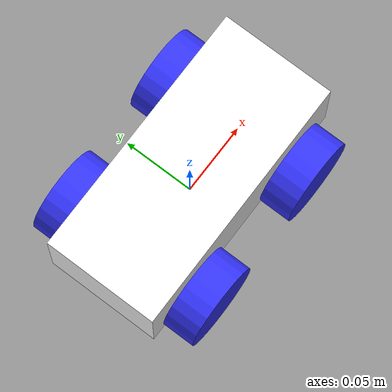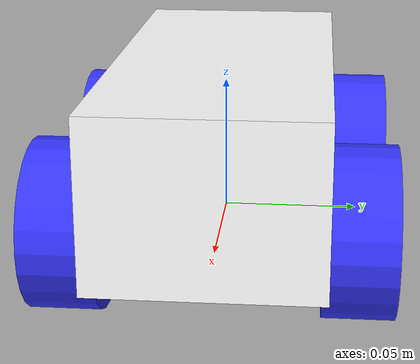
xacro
<?xml version="1.0"?>
<robot xmlns:xacro="http://www.ros.org/wiki/xacro">

    <xacro:include filename="inertial_macros.xacro"/>

    <material name="white">
        <color rgba="1 1 1 1"/>
    </material>

    <material name="orange">
        <color rgba="1 0.3 0.1 1"/>
    </material>

    <material name="blue">
        <color rgba="0.2 0.2 1 1"/>
    </material>

    <material name="black">
        <color rgba="0 0 0 1"/>
    </material>

    <material name="red">
        <color rgba="1 0 0 1"/>
    </material>

    <!-- BASE LINK -->

    <link name="base_link">

    </link>

    <!-- CHASSIS LINK -->

    <joint name="chassis_joint" type="fixed">
        <parent link="base_link"/>
        <child link="chassis"/>
        <origin xyz="-0.09 0 0"/>
    </joint>

    <link name="chassis">
        <visual>
            <origin xyz="0.09 0 0.03" rpy="0 0 0"/>
            <geometry>
                <box size="0.18 0.08 0.06"/>
            </geometry>
            <material name="white"/>
        </visual>
        <collision>
            <origin xyz="0.09 0 0.03" rpy="0 0 0"/>
            <geometry>
                <box size="0.18 0.08 0.06"/>
            </geometry>
        </collision>
        <xacro:inertial_box mass="0.01" x="0.18" y="0.08" z="0.06">
            <origin xyz="0.09 0 0.03" rpy="0 0 0"/>
        </xacro:inertial_box>
    </link>

    <gazebo reference="chassis">
        <material>Gazebo/White</material>
    </gazebo>

    <!-- REAR LEFT WHEEL LINK -->

    <joint name="rear_left_wheel_joint" type="continuous">
        <parent link="chassis"/>
        <child link="rear_left_wheel"/>
        <origin xyz="0.04 0.05 0.01" rpy="-${pi/2} 0 0"/>
        <axis xyz="0 0 1"/>
    </joint>

    <link name="rear_left_wheel">
        <visual>
            <geometry>
                <cylinder radius="0.03" length="0.025"/>
            </geometry>
            <material name="blue"/>
        </visual>
        <collision>
            <geometry>
                <cylinder radius="0.03" length="0.025"/>
            </geometry>
        </collision>
        <xacro:inertial_cylinder mass="0.01" length="0.025" radius="0.03">
            <origin xyz="0 0 0" rpy="0 0 0"/>
        </xacro:inertial_cylinder>
    </link>

    <gazebo reference="rear_left_wheel">
        <material>Gazebo/Blue</material>
    </gazebo>

    <!-- FRONT LEFT WHEEL LINK -->

    <joint name="front_left_wheel_joint" type="continuous">
        <parent link="chassis"/>
        <child link="front_left_wheel"/>
        <origin xyz="0.14 0.05 0.01" rpy="-${pi/2} 0 0"/>
        <axis xyz="0 0 1"/>
    </joint>

    <link name="front_left_wheel">
        <visual>
            <geometry>
                <cylinder radius="0.03" length="0.025"/>
            </geometry>
            <material name="blue"/>
        </visual>
        <collision>
            <geometry>
                <cylinder radius="0.03" length="0.025"/>
            </geometry>
        </collision>
        <xacro:inertial_cylinder mass="0.01" length="0.025" radius="0.03">
            <origin xyz="0 0 0" rpy="0 0 0"/>
        </xacro:inertial_cylinder>
    </link>

    <gazebo reference="front_left_wheel">
        <material>Gazebo/Blue</material>
    </gazebo>

    <!-- REAR RIGHT WHEEL LINK -->

    <joint name="rear_right_wheel_joint" type="continuous">
        <parent link="chassis"/>
        <child link="rear_right_wheel"/>
        <origin xyz="0.04 -0.05 0.01" rpy="${pi/2} 0 0"/>
        <axis xyz="0 0 -1"/>
    </joint>

    <link name="rear_right_wheel">
        <visual>
            <geometry>
                <cylinder radius="0.03" length="0.025"/>
            </geometry>
            <material name="blue"/>
        </visual>
        <collision>
            <geometry>
                <cylinder radius="0.03" length="0.025"/>
            </geometry>
        </collision>
        <xacro:inertial_cylinder mass="0.01" length="0.025" radius="0.03">
            <origin xyz="0 0 0" rpy="0 0 0"/>
        </xacro:inertial_cylinder>
    </link>

    <gazebo reference="rear_right_wheel">
        <material>Gazebo/Blue</material>
    </gazebo>

    <!-- FRONT RIGHT WHEEL LINK -->

    <joint name="front_right_wheel_joint" type="continuous">
        <parent link="chassis"/>
        <child link="front_right_wheel"/>
        <origin xyz="0.14 -0.05 0.01" rpy="${pi/2} 0 0"/>
        <axis xyz="0 0 -1"/>
    </joint>

    <link name="front_right_wheel">
        <visual>
            <geometry>
                <cylinder radius="0.03" length="0.025"/>
            </geometry>
            <material name="blue"/>
        </visual>
        <collision>
            <geometry>
                <cylinder radius="0.03" length="0.025"/>
            </geometry>
        </collision>
        <xacro:inertial_cylinder mass="0.01" length="0.025" radius="0.03">
            <origin xyz="0 0 0" rpy="0 0 0"/>
        </xacro:inertial_cylinder>
    </link>

    <gazebo reference="front_right_wheel">
        <material>Gazebo/Blue</material>
    </gazebo>

    <!-- FRONT CASTER WHEEL -->

    <!-- REAR CASTER WHEEL -->

</robot>
